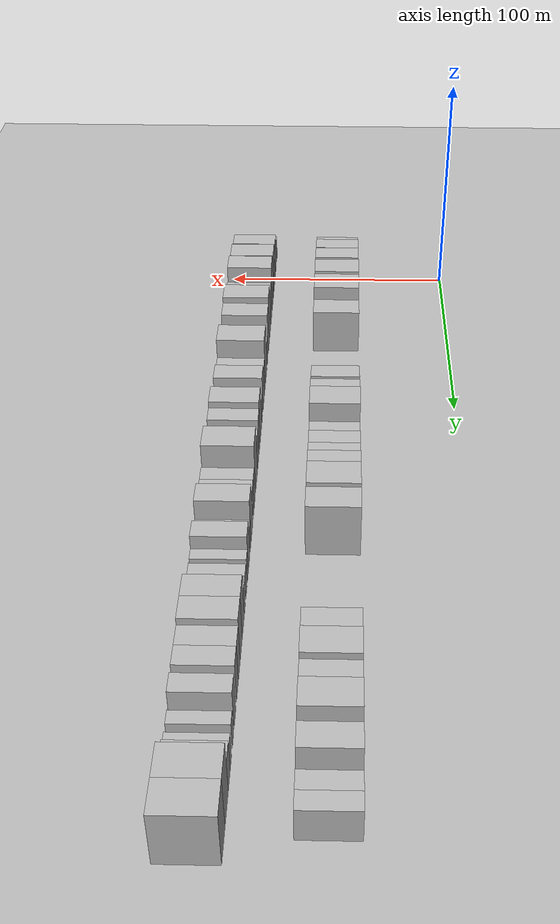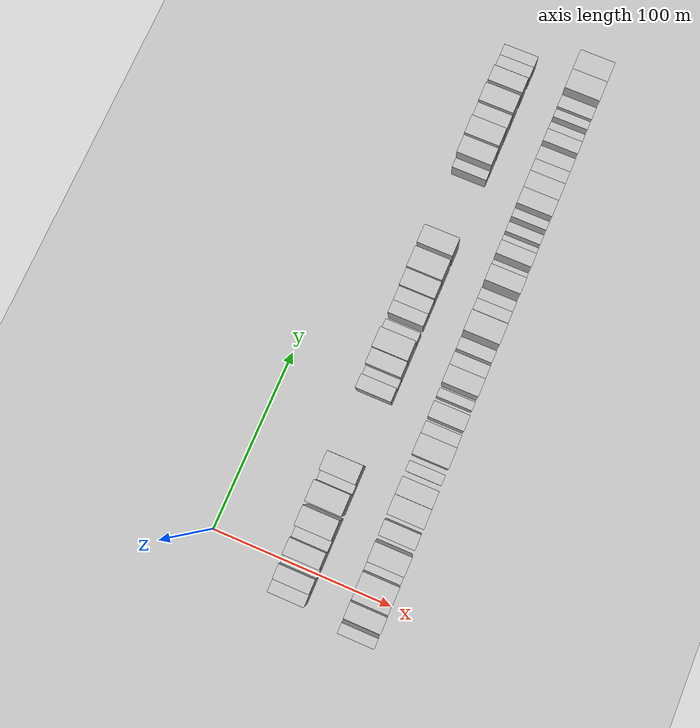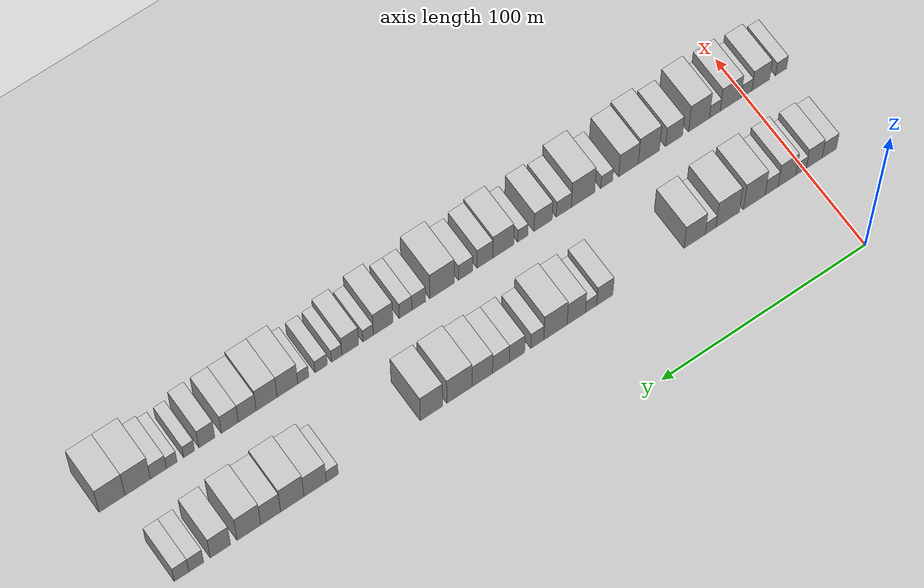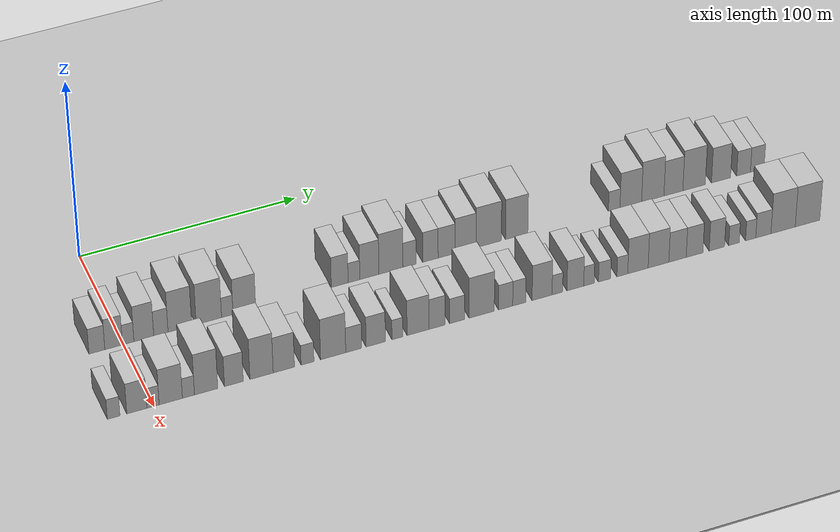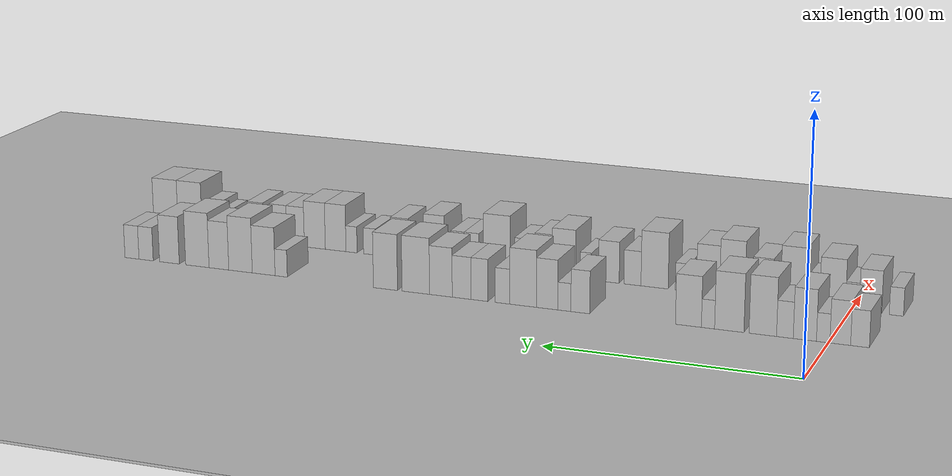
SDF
<sdf version="1.6">
 <world name="default">
  <include><name>ground_plane_1</name><uri>model://HANNAS_ground_plane</uri></include>
  <include>
   <name>ground_plane_2</name>
   <uri>model://HANNAS_ground_plane</uri>
   <pose>100 0 0  0 0 0</pose>
  </include>
  <model name="building_32">
   <static>1</static>
   <pose>50.0000 -12.0020 0 0.000000 0.000000 0.000000</pose>
   <link name="link">
    <pose>0 0 7.50 0 0 0</pose>
    <collision name="collision"><geometry><box><size>20.0000 7.1049 15.0000</size></box></geometry></collision>
    <visual name="visual">
     <cast_shadows>0</cast_shadows>
     <geometry><box><size>20.0000 7.1049 15.0000</size></box></geometry>
     <material>
      <script>
       <uri>model://HANNAS_wall/materials/scripts</uri>
       <uri>model://HANNAS_wall/materials/textures</uri>
       <name>vrc/HANNAS_wall</name>
      </script>
     </material>
    </visual>
   </link>
  </model>
  <model name="building_33">
   <static>1</static>
   <pose>50.0000 -4.5010 0 0.000000 0.000000 0.000000</pose>
   <link name="link">
    <pose>0 0 9.00 0 0 0</pose>
    <collision name="collision"><geometry><box><size>20.0000 7.8972 18.0000</size></box></geometry></collision>
    <visual name="visual">
     <cast_shadows>0</cast_shadows>
     <geometry><box><size>20.0000 7.8972 18.0000</size></box></geometry>
     <material>
      <script>
       <uri>model://HANNAS_wall/materials/scripts</uri>
       <uri>model://HANNAS_wall/materials/textures</uri>
       <name>vrc/HANNAS_wall</name>
      </script>
     </material>
    </visual>
   </link>
  </model>
  <model name="building_34">
   <static>1</static>
   <pose>50.0000 2.0246 0 0.000000 0.000000 0.000000</pose>
   <link name="link">
    <pose>0 0 6.00 0 0 0</pose>
    <collision name="collision"><geometry><box><size>20.0000 5.1541 12.0000</size></box></geometry></collision>
    <visual name="visual">
     <cast_shadows>0</cast_shadows>
     <geometry><box><size>20.0000 5.1541 12.0000</size></box></geometry>
     <material>
      <script>
       <uri>model://HANNAS_wall/materials/scripts</uri>
       <uri>model://HANNAS_wall/materials/textures</uri>
       <name>vrc/HANNAS_wall</name>
      </script>
     </material>
    </visual>
   </link>
  </model>
  <model name="building_35">
   <static>1</static>
   <pose>50.0000 9.0634 0 0.000000 0.000000 0.000000</pose>
   <link name="link">
    <pose>0 0 10.50 0 0 0</pose>
    <collision name="collision"><geometry><box><size>20.0000 8.9235 21.0000</size></box></geometry></collision>
    <visual name="visual">
     <cast_shadows>0</cast_shadows>
     <geometry><box><size>20.0000 8.9235 21.0000</size></box></geometry>
     <material>
      <script>
       <uri>model://HANNAS_wall/materials/scripts</uri>
       <uri>model://HANNAS_wall/materials/textures</uri>
       <name>vrc/HANNAS_wall</name>
      </script>
     </material>
    </visual>
   </link>
  </model>
  <model name="building_36">
   <static>1</static>
   <pose>50.0000 16.7564 0 0.000000 0.000000 0.000000</pose>
   <link name="link">
    <pose>0 0 7.50 0 0 0</pose>
    <collision name="collision"><geometry><box><size>20.0000 6.4625 15.0000</size></box></geometry></collision>
    <visual name="visual">
     <cast_shadows>0</cast_shadows>
     <geometry><box><size>20.0000 6.4625 15.0000</size></box></geometry>
     <material>
      <script>
       <uri>model://HANNAS_wall/materials/scripts</uri>
       <uri>model://HANNAS_wall/materials/textures</uri>
       <name>vrc/HANNAS_wall</name>
      </script>
     </material>
    </visual>
   </link>
  </model>
  <model name="building_37">
   <static>1</static>
   <pose>50.0000 25.3487 0 0.000000 0.000000 0.000000</pose>
   <link name="link">
    <pose>0 0 12.00 0 0 0</pose>
    <collision name="collision"><geometry><box><size>20.0000 10.7221 24.0000</size></box></geometry></collision>
    <visual name="visual">
     <cast_shadows>0</cast_shadows>
     <geometry><box><size>20.0000 10.7221 24.0000</size></box></geometry>
     <material>
      <script>
       <uri>model://HANNAS_wall/materials/scripts</uri>
       <uri>model://HANNAS_wall/materials/textures</uri>
       <name>vrc/HANNAS_wall</name>
      </script>
     </material>
    </visual>
   </link>
  </model>
  <model name="building_38">
   <static>1</static>
   <pose>50.0000 38.4899 0 0.000000 0.000000 0.000000</pose>
   <link name="link">
    <pose>0 0 12.00 0 0 0</pose>
    <collision name="collision"><geometry><box><size>20.0000 11.5604 24.0000</size></box></geometry></collision>
    <visual name="visual">
     <cast_shadows>0</cast_shadows>
     <geometry><box><size>20.0000 11.5604 24.0000</size></box></geometry>
     <material>
      <script>
       <uri>model://HANNAS_wall/materials/scripts</uri>
       <uri>model://HANNAS_wall/materials/textures</uri>
       <name>vrc/HANNAS_wall</name>
      </script>
     </material>
    </visual>
   </link>
  </model>
  <model name="building_39">
   <static>1</static>
   <pose>50.0000 46.8891 0 0.000000 0.000000 0.000000</pose>
   <link name="link">
    <pose>0 0 6.00 0 0 0</pose>
    <collision name="collision"><geometry><box><size>20.0000 5.2379 12.0000</size></box></geometry></collision>
    <visual name="visual">
     <cast_shadows>0</cast_shadows>
     <geometry><box><size>20.0000 5.2379 12.0000</size></box></geometry>
     <material>
      <script>
       <uri>model://HANNAS_wall/materials/scripts</uri>
       <uri>model://HANNAS_wall/materials/textures</uri>
       <name>vrc/HANNAS_wall</name>
      </script>
     </material>
    </visual>
   </link>
  </model>
  <model name="building_40">
   <static>1</static>
   <pose>50.0000 54.6845 0 0.000000 0.000000 0.000000</pose>
   <link name="link">
    <pose>0 0 10.50 0 0 0</pose>
    <collision name="collision"><geometry><box><size>20.0000 10.3529 21.0000</size></box></geometry></collision>
    <visual name="visual">
     <cast_shadows>0</cast_shadows>
     <geometry><box><size>20.0000 10.3529 21.0000</size></box></geometry>
     <material>
      <script>
       <uri>model://HANNAS_wall/materials/scripts</uri>
       <uri>model://HANNAS_wall/materials/textures</uri>
       <name>vrc/HANNAS_wall</name>
      </script>
     </material>
    </visual>
   </link>
  </model>
  <model name="building_41">
   <static>1</static>
   <pose>50.0000 98.5594 0 0.000000 0.000000 0.000000</pose>
   <link name="link">
    <pose>0 0 9.00 0 0 0</pose>
    <collision name="collision"><geometry><box><size>20.0000 7.7990 18.0000</size></box></geometry></collision>
    <visual name="visual">
     <cast_shadows>0</cast_shadows>
     <geometry><box><size>20.0000 7.7990 18.0000</size></box></geometry>
     <material>
      <script>
       <uri>model://HANNAS_wall/materials/scripts</uri>
       <uri>model://HANNAS_wall/materials/textures</uri>
       <name>vrc/HANNAS_wall</name>
      </script>
     </material>
    </visual>
   </link>
  </model>
  <model name="building_42">
   <static>1</static>
   <pose>50.0000 105.1800 0 0.000000 0.000000 0.000000</pose>
   <link name="link">
    <pose>0 0 6.00 0 0 0</pose>
    <collision name="collision"><geometry><box><size>20.0000 5.4422 12.0000</size></box></geometry></collision>
    <visual name="visual">
     <cast_shadows>0</cast_shadows>
     <geometry><box><size>20.0000 5.4422 12.0000</size></box></geometry>
     <material>
      <script>
       <uri>model://HANNAS_wall/materials/scripts</uri>
       <uri>model://HANNAS_wall/materials/textures</uri>
       <name>vrc/HANNAS_wall</name>
      </script>
     </material>
    </visual>
   </link>
  </model>
  <model name="building_43">
   <static>1</static>
   <pose>50.0000 112.3413 0 0.000000 0.000000 0.000000</pose>
   <link name="link">
    <pose>0 0 10.50 0 0 0</pose>
    <collision name="collision"><geometry><box><size>20.0000 8.8804 21.0000</size></box></geometry></collision>
    <visual name="visual">
     <cast_shadows>0</cast_shadows>
     <geometry><box><size>20.0000 8.8804 21.0000</size></box></geometry>
     <material>
      <script>
       <uri>model://HANNAS_wall/materials/scripts</uri>
       <uri>model://HANNAS_wall/materials/textures</uri>
       <name>vrc/HANNAS_wall</name>
      </script>
     </material>
    </visual>
   </link>
  </model>
  <model name="building_44">
   <static>1</static>
   <pose>50.0000 122.3902 0 0.000000 0.000000 0.000000</pose>
   <link name="link">
    <pose>0 0 12.00 0 0 0</pose>
    <collision name="collision"><geometry><box><size>20.0000 11.2172 24.0000</size></box></geometry></collision>
    <visual name="visual">
     <cast_shadows>0</cast_shadows>
     <geometry><box><size>20.0000 11.2172 24.0000</size></box></geometry>
     <material>
      <script>
       <uri>model://HANNAS_wall/materials/scripts</uri>
       <uri>model://HANNAS_wall/materials/textures</uri>
       <name>vrc/HANNAS_wall</name>
      </script>
     </material>
    </visual>
   </link>
  </model>
  <model name="building_45">
   <static>1</static>
   <pose>50.0000 131.1028 0 0.000000 0.000000 0.000000</pose>
   <link name="link">
    <pose>0 0 7.50 0 0 0</pose>
    <collision name="collision"><geometry><box><size>20.0000 6.2081 15.0000</size></box></geometry></collision>
    <visual name="visual">
     <cast_shadows>0</cast_shadows>
     <geometry><box><size>20.0000 6.2081 15.0000</size></box></geometry>
     <material>
      <script>
       <uri>model://HANNAS_wall/materials/scripts</uri>
       <uri>model://HANNAS_wall/materials/textures</uri>
       <name>vrc/HANNAS_wall</name>
      </script>
     </material>
    </visual>
   </link>
  </model>
  <model name="building_46">
   <static>1</static>
   <pose>50.0000 140.8274 0 0.000000 0.000000 0.000000</pose>
   <link name="link">
    <pose>0 0 9.00 0 0 0</pose>
    <collision name="collision"><geometry><box><size>20.0000 7.2410 18.0000</size></box></geometry></collision>
    <visual name="visual">
     <cast_shadows>0</cast_shadows>
     <geometry><box><size>20.0000 7.2410 18.0000</size></box></geometry>
     <material>
      <script>
       <uri>model://HANNAS_wall/materials/scripts</uri>
       <uri>model://HANNAS_wall/materials/textures</uri>
       <name>vrc/HANNAS_wall</name>
      </script>
     </material>
    </visual>
   </link>
  </model>
  <model name="building_47">
   <static>1</static>
   <pose>50.0000 148.4750 0 0.000000 0.000000 0.000000</pose>
   <link name="link">
    <pose>0 0 9.00 0 0 0</pose>
    <collision name="collision"><geometry><box><size>20.0000 8.0542 18.0000</size></box></geometry></collision>
    <visual name="visual">
     <cast_shadows>0</cast_shadows>
     <geometry><box><size>20.0000 8.0542 18.0000</size></box></geometry>
     <material>
      <script>
       <uri>model://HANNAS_wall/materials/scripts</uri>
       <uri>model://HANNAS_wall/materials/textures</uri>
       <name>vrc/HANNAS_wall</name>
      </script>
     </material>
    </visual>
   </link>
  </model>
  <model name="building_48">
   <static>1</static>
   <pose>50.0000 157.4000 0 0.000000 0.000000 0.000000</pose>
   <link name="link">
    <pose>0 0 10.50 0 0 0</pose>
    <collision name="collision"><geometry><box><size>20.0000 9.7958 21.0000</size></box></geometry></collision>
    <visual name="visual">
     <cast_shadows>0</cast_shadows>
     <geometry><box><size>20.0000 9.7958 21.0000</size></box></geometry>
     <material>
      <script>
       <uri>model://HANNAS_wall/materials/scripts</uri>
       <uri>model://HANNAS_wall/materials/textures</uri>
       <name>vrc/HANNAS_wall</name>
      </script>
     </material>
    </visual>
   </link>
  </model>
  <model name="building_49">
   <static>1</static>
   <pose>50.0000 168.2765 0 0.000000 0.000000 0.000000</pose>
   <link name="link">
    <pose>0 0 12.00 0 0 0</pose>
    <collision name="collision"><geometry><box><size>20.0000 11.9573 24.0000</size></box></geometry></collision>
    <visual name="visual">
     <cast_shadows>0</cast_shadows>
     <geometry><box><size>20.0000 11.9573 24.0000</size></box></geometry>
     <material>
      <script>
       <uri>model://HANNAS_wall/materials/scripts</uri>
       <uri>model://HANNAS_wall/materials/textures</uri>
       <name>vrc/HANNAS_wall</name>
      </script>
     </material>
    </visual>
   </link>
  </model>
  <model name="building_50">
   <static>1</static>
   <pose>50.0000 181.5439 0 0.000000 0.000000 0.000000</pose>
   <link name="link">
    <pose>0 0 12.00 0 0 0</pose>
    <collision name="collision"><geometry><box><size>20.0000 10.5775 24.0000</size></box></geometry></collision>
    <visual name="visual">
     <cast_shadows>0</cast_shadows>
     <geometry><box><size>20.0000 10.5775 24.0000</size></box></geometry>
     <material>
      <script>
       <uri>model://HANNAS_wall/materials/scripts</uri>
       <uri>model://HANNAS_wall/materials/textures</uri>
       <name>vrc/HANNAS_wall</name>
      </script>
     </material>
    </visual>
   </link>
  </model>
  <model name="building_51">
   <static>1</static>
   <pose>50.0000 228.1648 0 0.000000 0.000000 0.000000</pose>
   <link name="link">
    <pose>0 0 6.00 0 0 0</pose>
    <collision name="collision"><geometry><box><size>20.0000 5.5547 12.0000</size></box></geometry></collision>
    <visual name="visual">
     <cast_shadows>0</cast_shadows>
     <geometry><box><size>20.0000 5.5547 12.0000</size></box></geometry>
     <material>
      <script>
       <uri>model://HANNAS_wall/materials/scripts</uri>
       <uri>model://HANNAS_wall/materials/textures</uri>
       <name>vrc/HANNAS_wall</name>
      </script>
     </material>
    </visual>
   </link>
  </model>
  <model name="building_52">
   <static>1</static>
   <pose>50.0000 236.1582 0 0.000000 0.000000 0.000000</pose>
   <link name="link">
    <pose>0 0 10.50 0 0 0</pose>
    <collision name="collision"><geometry><box><size>20.0000 10.4321 21.0000</size></box></geometry></collision>
    <visual name="visual">
     <cast_shadows>0</cast_shadows>
     <geometry><box><size>20.0000 10.4321 21.0000</size></box></geometry>
     <material>
      <script>
       <uri>model://HANNAS_wall/materials/scripts</uri>
       <uri>model://HANNAS_wall/materials/textures</uri>
       <name>vrc/HANNAS_wall</name>
      </script>
     </material>
    </visual>
   </link>
  </model>
  <model name="building_53">
   <static>1</static>
   <pose>50.0000 246.7949 0 0.000000 0.000000 0.000000</pose>
   <link name="link">
    <pose>0 0 12.00 0 0 0</pose>
    <collision name="collision"><geometry><box><size>20.0000 10.8414 24.0000</size></box></geometry></collision>
    <visual name="visual">
     <cast_shadows>0</cast_shadows>
     <geometry><box><size>20.0000 10.8414 24.0000</size></box></geometry>
     <material>
      <script>
       <uri>model://HANNAS_wall/materials/scripts</uri>
       <uri>model://HANNAS_wall/materials/textures</uri>
       <name>vrc/HANNAS_wall</name>
      </script>
     </material>
    </visual>
   </link>
  </model>
  <model name="building_54">
   <static>1</static>
   <pose>50.0000 256.7974 0 0.000000 0.000000 0.000000</pose>
   <link name="link">
    <pose>0 0 10.50 0 0 0</pose>
    <collision name="collision"><geometry><box><size>20.0000 9.1635 21.0000</size></box></geometry></collision>
    <visual name="visual">
     <cast_shadows>0</cast_shadows>
     <geometry><box><size>20.0000 9.1635 21.0000</size></box></geometry>
     <material>
      <script>
       <uri>model://HANNAS_wall/materials/scripts</uri>
       <uri>model://HANNAS_wall/materials/textures</uri>
       <name>vrc/HANNAS_wall</name>
      </script>
     </material>
    </visual>
   </link>
  </model>
  <model name="building_55">
   <static>1</static>
   <pose>50.0000 266.8488 0 0.000000 0.000000 0.000000</pose>
   <link name="link">
    <pose>0 0 12.00 0 0 0</pose>
    <collision name="collision"><geometry><box><size>20.0000 10.9392 24.0000</size></box></geometry></collision>
    <visual name="visual">
     <cast_shadows>0</cast_shadows>
     <geometry><box><size>20.0000 10.9392 24.0000</size></box></geometry>
     <material>
      <script>
       <uri>model://HANNAS_wall/materials/scripts</uri>
       <uri>model://HANNAS_wall/materials/textures</uri>
       <name>vrc/HANNAS_wall</name>
      </script>
     </material>
    </visual>
   </link>
  </model>
  <model name="building_56">
   <static>1</static>
   <pose>50.0000 279.9797 0 0.000000 0.000000 0.000000</pose>
   <link name="link">
    <pose>0 0 10.50 0 0 0</pose>
    <collision name="collision"><geometry><box><size>20.0000 9.3226 21.0000</size></box></geometry></collision>
    <visual name="visual">
     <cast_shadows>0</cast_shadows>
     <geometry><box><size>20.0000 9.3226 21.0000</size></box></geometry>
     <material>
      <script>
       <uri>model://HANNAS_wall/materials/scripts</uri>
       <uri>model://HANNAS_wall/materials/textures</uri>
       <name>vrc/HANNAS_wall</name>
      </script>
     </material>
    </visual>
   </link>
  </model>
  <model name="building_57">
   <static>1</static>
   <pose>50.0000 291.0254 0 0.000000 0.000000 0.000000</pose>
   <link name="link">
    <pose>0 0 7.50 0 0 0</pose>
    <collision name="collision"><geometry><box><size>20.0000 6.7688 15.0000</size></box></geometry></collision>
    <visual name="visual">
     <cast_shadows>0</cast_shadows>
     <geometry><box><size>20.0000 6.7688 15.0000</size></box></geometry>
     <material>
      <script>
       <uri>model://HANNAS_wall/materials/scripts</uri>
       <uri>model://HANNAS_wall/materials/textures</uri>
       <name>vrc/HANNAS_wall</name>
      </script>
     </material>
    </visual>
   </link>
  </model>
  <model name="building_58">
   <static>1</static>
   <pose>50.0000 297.7569 0 0.000000 0.000000 0.000000</pose>
   <link name="link">
    <pose>0 0 7.50 0 0 0</pose>
    <collision name="collision"><geometry><box><size>20.0000 6.6942 15.0000</size></box></geometry></collision>
    <visual name="visual">
     <cast_shadows>0</cast_shadows>
     <geometry><box><size>20.0000 6.6942 15.0000</size></box></geometry>
     <material>
      <script>
       <uri>model://HANNAS_wall/materials/scripts</uri>
       <uri>model://HANNAS_wall/materials/textures</uri>
       <name>vrc/HANNAS_wall</name>
      </script>
     </material>
    </visual>
   </link>
  </model>
  <model name="building_92">
   <static>1</static>
   <pose>90.0000 -17.9194 0 0.000000 0.000000 0.000000</pose>
   <link name="link">
    <pose>0 0 6.00 0 0 0</pose>
    <collision name="collision"><geometry><box><size>20.0000 5.5938 12.0000</size></box></geometry></collision>
    <visual name="visual">
     <cast_shadows>0</cast_shadows>
     <geometry><box><size>20.0000 5.5938 12.0000</size></box></geometry>
     <material>
      <script>
       <uri>model://HANNAS_wall/materials/scripts</uri>
       <uri>model://HANNAS_wall/materials/textures</uri>
       <name>vrc/HANNAS_wall</name>
      </script>
     </material>
    </visual>
   </link>
  </model>
  <model name="building_93">
   <static>1</static>
   <pose>90.0000 -7.6824 0 0.000000 0.000000 0.000000</pose>
   <link name="link">
    <pose>0 0 9.00 0 0 0</pose>
    <collision name="collision"><geometry><box><size>20.0000 8.8802 18.0000</size></box></geometry></collision>
    <visual name="visual">
     <cast_shadows>0</cast_shadows>
     <geometry><box><size>20.0000 8.8802 18.0000</size></box></geometry>
     <material>
      <script>
       <uri>model://HANNAS_wall/materials/scripts</uri>
       <uri>model://HANNAS_wall/materials/textures</uri>
       <name>vrc/HANNAS_wall</name>
      </script>
     </material>
    </visual>
   </link>
  </model>
  <model name="building_94">
   <static>1</static>
   <pose>90.0000 -0.5078 0 0.000000 0.000000 0.000000</pose>
   <link name="link">
    <pose>0 0 6.00 0 0 0</pose>
    <collision name="collision"><geometry><box><size>20.0000 5.4689 12.0000</size></box></geometry></collision>
    <visual name="visual">
     <cast_shadows>0</cast_shadows>
     <geometry><box><size>20.0000 5.4689 12.0000</size></box></geometry>
     <material>
      <script>
       <uri>model://HANNAS_wall/materials/scripts</uri>
       <uri>model://HANNAS_wall/materials/textures</uri>
       <name>vrc/HANNAS_wall</name>
      </script>
     </material>
    </visual>
   </link>
  </model>
  <model name="building_95">
   <static>1</static>
   <pose>90.0000 7.3962 0 0.000000 0.000000 0.000000</pose>
   <link name="link">
    <pose>0 0 10.50 0 0 0</pose>
    <collision name="collision"><geometry><box><size>20.0000 10.3393 21.0000</size></box></geometry></collision>
    <visual name="visual">
     <cast_shadows>0</cast_shadows>
     <geometry><box><size>20.0000 10.3393 21.0000</size></box></geometry>
     <material>
      <script>
       <uri>model://HANNAS_wall/materials/scripts</uri>
       <uri>model://HANNAS_wall/materials/textures</uri>
       <name>vrc/HANNAS_wall</name>
      </script>
     </material>
    </visual>
   </link>
  </model>
  <model name="building_96">
   <static>1</static>
   <pose>90.0000 15.2545 0 0.000000 0.000000 0.000000</pose>
   <link name="link">
    <pose>0 0 6.00 0 0 0</pose>
    <collision name="collision"><geometry><box><size>20.0000 5.3772 12.0000</size></box></geometry></collision>
    <visual name="visual">
     <cast_shadows>0</cast_shadows>
     <geometry><box><size>20.0000 5.3772 12.0000</size></box></geometry>
     <material>
      <script>
       <uri>model://HANNAS_wall/materials/scripts</uri>
       <uri>model://HANNAS_wall/materials/textures</uri>
       <name>vrc/HANNAS_wall</name>
      </script>
     </material>
    </visual>
   </link>
  </model>
  <model name="building_97">
   <static>1</static>
   <pose>90.0000 23.1476 0 0.000000 0.000000 0.000000</pose>
   <link name="link">
    <pose>0 0 12.00 0 0 0</pose>
    <collision name="collision"><geometry><box><size>20.0000 10.4091 24.0000</size></box></geometry></collision>
    <visual name="visual">
     <cast_shadows>0</cast_shadows>
     <geometry><box><size>20.0000 10.4091 24.0000</size></box></geometry>
     <material>
      <script>
       <uri>model://HANNAS_wall/materials/scripts</uri>
       <uri>model://HANNAS_wall/materials/textures</uri>
       <name>vrc/HANNAS_wall</name>
      </script>
     </material>
    </visual>
   </link>
  </model>
  <model name="building_98">
   <static>1</static>
   <pose>90.0000 35.5599 0 0.000000 0.000000 0.000000</pose>
   <link name="link">
    <pose>0 0 9.00 0 0 0</pose>
    <collision name="collision"><geometry><box><size>20.0000 8.4156 18.0000</size></box></geometry></collision>
    <visual name="visual">
     <cast_shadows>0</cast_shadows>
     <geometry><box><size>20.0000 8.4156 18.0000</size></box></geometry>
     <material>
      <script>
       <uri>model://HANNAS_wall/materials/scripts</uri>
       <uri>model://HANNAS_wall/materials/textures</uri>
       <name>vrc/HANNAS_wall</name>
      </script>
     </material>
    </visual>
   </link>
  </model>
  <model name="building_99">
   <static>1</static>
   <pose>90.0000 48.0011 0 0.000000 0.000000 0.000000</pose>
   <link name="link">
    <pose>0 0 12.00 0 0 0</pose>
    <collision name="collision"><geometry><box><size>20.0000 10.4667 24.0000</size></box></geometry></collision>
    <visual name="visual">
     <cast_shadows>0</cast_shadows>
     <geometry><box><size>20.0000 10.4667 24.0000</size></box></geometry>
     <material>
      <script>
       <uri>model://HANNAS_wall/materials/scripts</uri>
       <uri>model://HANNAS_wall/materials/textures</uri>
       <name>vrc/HANNAS_wall</name>
      </script>
     </material>
    </visual>
   </link>
  </model>
  <model name="building_100">
   <static>1</static>
   <pose>90.0000 58.0414 0 0.000000 0.000000 0.000000</pose>
   <link name="link">
    <pose>0 0 10.50 0 0 0</pose>
    <collision name="collision"><geometry><box><size>20.0000 9.6138 21.0000</size></box></geometry></collision>
    <visual name="visual">
     <cast_shadows>0</cast_shadows>
     <geometry><box><size>20.0000 9.6138 21.0000</size></box></geometry>
     <material>
      <script>
       <uri>model://HANNAS_wall/materials/scripts</uri>
       <uri>model://HANNAS_wall/materials/textures</uri>
       <name>vrc/HANNAS_wall</name>
      </script>
     </material>
    </visual>
   </link>
  </model>
  <model name="building_101">
   <static>1</static>
   <pose>90.0000 68.7507 0 0.000000 0.000000 0.000000</pose>
   <link name="link">
    <pose>0 0 6.00 0 0 0</pose>
    <collision name="collision"><geometry><box><size>20.0000 5.8049 12.0000</size></box></geometry></collision>
    <visual name="visual">
     <cast_shadows>0</cast_shadows>
     <geometry><box><size>20.0000 5.8049 12.0000</size></box></geometry>
     <material>
      <script>
       <uri>model://HANNAS_wall/materials/scripts</uri>
       <uri>model://HANNAS_wall/materials/textures</uri>
       <name>vrc/HANNAS_wall</name>
      </script>
     </material>
    </visual>
   </link>
  </model>
  <model name="building_102">
   <static>1</static>
   <pose>90.0000 80.3882 0 0.000000 0.000000 0.000000</pose>
   <link name="link">
    <pose>0 0 12.00 0 0 0</pose>
    <collision name="collision"><geometry><box><size>20.0000 11.4701 24.0000</size></box></geometry></collision>
    <visual name="visual">
     <cast_shadows>0</cast_shadows>
     <geometry><box><size>20.0000 11.4701 24.0000</size></box></geometry>
     <material>
      <script>
       <uri>model://HANNAS_wall/materials/scripts</uri>
       <uri>model://HANNAS_wall/materials/textures</uri>
       <name>vrc/HANNAS_wall</name>
      </script>
     </material>
    </visual>
   </link>
  </model>
  <model name="building_103">
   <static>1</static>
   <pose>90.0000 89.7596 0 0.000000 0.000000 0.000000</pose>
   <link name="link">
    <pose>0 0 7.50 0 0 0</pose>
    <collision name="collision"><geometry><box><size>20.0000 7.2728 15.0000</size></box></geometry></collision>
    <visual name="visual">
     <cast_shadows>0</cast_shadows>
     <geometry><box><size>20.0000 7.2728 15.0000</size></box></geometry>
     <material>
      <script>
       <uri>model://HANNAS_wall/materials/scripts</uri>
       <uri>model://HANNAS_wall/materials/textures</uri>
       <name>vrc/HANNAS_wall</name>
      </script>
     </material>
    </visual>
   </link>
  </model>
  <model name="building_104">
   <static>1</static>
   <pose>90.0000 99.8215 0 0.000000 0.000000 0.000000</pose>
   <link name="link">
    <pose>0 0 9.00 0 0 0</pose>
    <collision name="collision"><geometry><box><size>20.0000 8.8509 18.0000</size></box></geometry></collision>
    <visual name="visual">
     <cast_shadows>0</cast_shadows>
     <geometry><box><size>20.0000 8.8509 18.0000</size></box></geometry>
     <material>
      <script>
       <uri>model://HANNAS_wall/materials/scripts</uri>
       <uri>model://HANNAS_wall/materials/textures</uri>
       <name>vrc/HANNAS_wall</name>
      </script>
     </material>
    </visual>
   </link>
  </model>
  <model name="building_105">
   <static>1</static>
   <pose>90.0000 109.7082 0 0.000000 0.000000 0.000000</pose>
   <link name="link">
    <pose>0 0 6.00 0 0 0</pose>
    <collision name="collision"><geometry><box><size>20.0000 4.9226 12.0000</size></box></geometry></collision>
    <visual name="visual">
     <cast_shadows>0</cast_shadows>
     <geometry><box><size>20.0000 4.9226 12.0000</size></box></geometry>
     <material>
      <script>
       <uri>model://HANNAS_wall/materials/scripts</uri>
       <uri>model://HANNAS_wall/materials/textures</uri>
       <name>vrc/HANNAS_wall</name>
      </script>
     </material>
    </visual>
   </link>
  </model>
  <model name="building_106">
   <static>1</static>
   <pose>90.0000 119.2009 0 0.000000 0.000000 0.000000</pose>
   <link name="link">
    <pose>0 0 10.50 0 0 0</pose>
    <collision name="collision"><geometry><box><size>20.0000 10.0628 21.0000</size></box></geometry></collision>
    <visual name="visual">
     <cast_shadows>0</cast_shadows>
     <geometry><box><size>20.0000 10.0628 21.0000</size></box></geometry>
     <material>
      <script>
       <uri>model://HANNAS_wall/materials/scripts</uri>
       <uri>model://HANNAS_wall/materials/textures</uri>
       <name>vrc/HANNAS_wall</name>
      </script>
     </material>
    </visual>
   </link>
  </model>
  <model name="building_107">
   <static>1</static>
   <pose>90.0000 128.0181 0 0.000000 0.000000 0.000000</pose>
   <link name="link">
    <pose>0 0 9.00 0 0 0</pose>
    <collision name="collision"><geometry><box><size>20.0000 7.5715 18.0000</size></box></geometry></collision>
    <visual name="visual">
     <cast_shadows>0</cast_shadows>
     <geometry><box><size>20.0000 7.5715 18.0000</size></box></geometry>
     <material>
      <script>
       <uri>model://HANNAS_wall/materials/scripts</uri>
       <uri>model://HANNAS_wall/materials/textures</uri>
       <name>vrc/HANNAS_wall</name>
      </script>
     </material>
    </visual>
   </link>
  </model>
  <model name="building_108">
   <static>1</static>
   <pose>90.0000 137.2961 0 0.000000 0.000000 0.000000</pose>
   <link name="link">
    <pose>0 0 7.50 0 0 0</pose>
    <collision name="collision"><geometry><box><size>20.0000 6.9845 15.0000</size></box></geometry></collision>
    <visual name="visual">
     <cast_shadows>0</cast_shadows>
     <geometry><box><size>20.0000 6.9845 15.0000</size></box></geometry>
     <material>
      <script>
       <uri>model://HANNAS_wall/materials/scripts</uri>
       <uri>model://HANNAS_wall/materials/textures</uri>
       <name>vrc/HANNAS_wall</name>
      </script>
     </material>
    </visual>
   </link>
  </model>
  <model name="building_109">
   <static>1</static>
   <pose>90.0000 148.6419 0 0.000000 0.000000 0.000000</pose>
   <link name="link">
    <pose>0 0 12.00 0 0 0</pose>
    <collision name="collision"><geometry><box><size>20.0000 11.7071 24.0000</size></box></geometry></collision>
    <visual name="visual">
     <cast_shadows>0</cast_shadows>
     <geometry><box><size>20.0000 11.7071 24.0000</size></box></geometry>
     <material>
      <script>
       <uri>model://HANNAS_wall/materials/scripts</uri>
       <uri>model://HANNAS_wall/materials/textures</uri>
       <name>vrc/HANNAS_wall</name>
      </script>
     </material>
    </visual>
   </link>
  </model>
  <model name="building_110">
   <static>1</static>
   <pose>90.0000 159.7817 0 0.000000 0.000000 0.000000</pose>
   <link name="link">
    <pose>0 0 7.50 0 0 0</pose>
    <collision name="collision"><geometry><box><size>20.0000 6.5724 15.0000</size></box></geometry></collision>
    <visual name="visual">
     <cast_shadows>0</cast_shadows>
     <geometry><box><size>20.0000 6.5724 15.0000</size></box></geometry>
     <material>
      <script>
       <uri>model://HANNAS_wall/materials/scripts</uri>
       <uri>model://HANNAS_wall/materials/textures</uri>
       <name>vrc/HANNAS_wall</name>
      </script>
     </material>
    </visual>
   </link>
  </model>
  <model name="building_111">
   <static>1</static>
   <pose>90.0000 166.0909 0 0.000000 0.000000 0.000000</pose>
   <link name="link">
    <pose>0 0 7.50 0 0 0</pose>
    <collision name="collision"><geometry><box><size>20.0000 6.0460 15.0000</size></box></geometry></collision>
    <visual name="visual">
     <cast_shadows>0</cast_shadows>
     <geometry><box><size>20.0000 6.0460 15.0000</size></box></geometry>
     <material>
      <script>
       <uri>model://HANNAS_wall/materials/scripts</uri>
       <uri>model://HANNAS_wall/materials/textures</uri>
       <name>vrc/HANNAS_wall</name>
      </script>
     </material>
    </visual>
   </link>
  </model>
  <model name="building_112">
   <static>1</static>
   <pose>90.0000 176.7826 0 0.000000 0.000000 0.000000</pose>
   <link name="link">
    <pose>0 0 10.50 0 0 0</pose>
    <collision name="collision"><geometry><box><size>20.0000 9.3373 21.0000</size></box></geometry></collision>
    <visual name="visual">
     <cast_shadows>0</cast_shadows>
     <geometry><box><size>20.0000 9.3373 21.0000</size></box></geometry>
     <material>
      <script>
       <uri>model://HANNAS_wall/materials/scripts</uri>
       <uri>model://HANNAS_wall/materials/textures</uri>
       <name>vrc/HANNAS_wall</name>
      </script>
     </material>
    </visual>
   </link>
  </model>
  <model name="building_113">
   <static>1</static>
   <pose>90.0000 183.9390 0 0.000000 0.000000 0.000000</pose>
   <link name="link">
    <pose>0 0 6.00 0 0 0</pose>
    <collision name="collision"><geometry><box><size>20.0000 4.9755 12.0000</size></box></geometry></collision>
    <visual name="visual">
     <cast_shadows>0</cast_shadows>
     <geometry><box><size>20.0000 4.9755 12.0000</size></box></geometry>
     <material>
      <script>
       <uri>model://HANNAS_wall/materials/scripts</uri>
       <uri>model://HANNAS_wall/materials/textures</uri>
       <name>vrc/HANNAS_wall</name>
      </script>
     </material>
    </visual>
   </link>
  </model>
  <model name="building_114">
   <static>1</static>
   <pose>90.0000 192.3892 0 0.000000 0.000000 0.000000</pose>
   <link name="link">
    <pose>0 0 9.00 0 0 0</pose>
    <collision name="collision"><geometry><box><size>20.0000 7.9249 18.0000</size></box></geometry></collision>
    <visual name="visual">
     <cast_shadows>0</cast_shadows>
     <geometry><box><size>20.0000 7.9249 18.0000</size></box></geometry>
     <material>
      <script>
       <uri>model://HANNAS_wall/materials/scripts</uri>
       <uri>model://HANNAS_wall/materials/textures</uri>
       <name>vrc/HANNAS_wall</name>
      </script>
     </material>
    </visual>
   </link>
  </model>
  <model name="building_115">
   <static>1</static>
   <pose>90.0000 198.8199 0 0.000000 0.000000 0.000000</pose>
   <link name="link">
    <pose>0 0 6.00 0 0 0</pose>
    <collision name="collision"><geometry><box><size>20.0000 4.9365 12.0000</size></box></geometry></collision>
    <visual name="visual">
     <cast_shadows>0</cast_shadows>
     <geometry><box><size>20.0000 4.9365 12.0000</size></box></geometry>
     <material>
      <script>
       <uri>model://HANNAS_wall/materials/scripts</uri>
       <uri>model://HANNAS_wall/materials/textures</uri>
       <name>vrc/HANNAS_wall</name>
      </script>
     </material>
    </visual>
   </link>
  </model>
  <model name="building_116">
   <static>1</static>
   <pose>90.0000 206.1501 0 0.000000 0.000000 0.000000</pose>
   <link name="link">
    <pose>0 0 6.00 0 0 0</pose>
    <collision name="collision"><geometry><box><size>20.0000 5.7239 12.0000</size></box></geometry></collision>
    <visual name="visual">
     <cast_shadows>0</cast_shadows>
     <geometry><box><size>20.0000 5.7239 12.0000</size></box></geometry>
     <material>
      <script>
       <uri>model://HANNAS_wall/materials/scripts</uri>
       <uri>model://HANNAS_wall/materials/textures</uri>
       <name>vrc/HANNAS_wall</name>
      </script>
     </material>
    </visual>
   </link>
  </model>
  <model name="building_117">
   <static>1</static>
   <pose>90.0000 214.5859 0 0.000000 0.000000 0.000000</pose>
   <link name="link">
    <pose>0 0 6.00 0 0 0</pose>
    <collision name="collision"><geometry><box><size>20.0000 5.1477 12.0000</size></box></geometry></collision>
    <visual name="visual">
     <cast_shadows>0</cast_shadows>
     <geometry><box><size>20.0000 5.1477 12.0000</size></box></geometry>
     <material>
      <script>
       <uri>model://HANNAS_wall/materials/scripts</uri>
       <uri>model://HANNAS_wall/materials/textures</uri>
       <name>vrc/HANNAS_wall</name>
      </script>
     </material>
    </visual>
   </link>
  </model>
  <model name="building_118">
   <static>1</static>
   <pose>90.0000 221.9915 0 0.000000 0.000000 0.000000</pose>
   <link name="link">
    <pose>0 0 10.50 0 0 0</pose>
    <collision name="collision"><geometry><box><size>20.0000 9.6636 21.0000</size></box></geometry></collision>
    <visual name="visual">
     <cast_shadows>0</cast_shadows>
     <geometry><box><size>20.0000 9.6636 21.0000</size></box></geometry>
     <material>
      <script>
       <uri>model://HANNAS_wall/materials/scripts</uri>
       <uri>model://HANNAS_wall/materials/textures</uri>
       <name>vrc/HANNAS_wall</name>
      </script>
     </material>
    </visual>
   </link>
  </model>
  <model name="building_119">
   <static>1</static>
   <pose>90.0000 231.7588 0 0.000000 0.000000 0.000000</pose>
   <link name="link">
    <pose>0 0 10.50 0 0 0</pose>
    <collision name="collision"><geometry><box><size>20.0000 9.8710 21.0000</size></box></geometry></collision>
    <visual name="visual">
     <cast_shadows>0</cast_shadows>
     <geometry><box><size>20.0000 9.8710 21.0000</size></box></geometry>
     <material>
      <script>
       <uri>model://HANNAS_wall/materials/scripts</uri>
       <uri>model://HANNAS_wall/materials/textures</uri>
       <name>vrc/HANNAS_wall</name>
      </script>
     </material>
    </visual>
   </link>
  </model>
  <model name="building_120">
   <static>1</static>
   <pose>90.0000 240.8363 0 0.000000 0.000000 0.000000</pose>
   <link name="link">
    <pose>0 0 9.00 0 0 0</pose>
    <collision name="collision"><geometry><box><size>20.0000 8.2839 18.0000</size></box></geometry></collision>
    <visual name="visual">
     <cast_shadows>0</cast_shadows>
     <geometry><box><size>20.0000 8.2839 18.0000</size></box></geometry>
     <material>
      <script>
       <uri>model://HANNAS_wall/materials/scripts</uri>
       <uri>model://HANNAS_wall/materials/textures</uri>
       <name>vrc/HANNAS_wall</name>
      </script>
     </material>
    </visual>
   </link>
  </model>
  <model name="building_121">
   <static>1</static>
   <pose>90.0000 248.9727 0 0.000000 0.000000 0.000000</pose>
   <link name="link">
    <pose>0 0 9.00 0 0 0</pose>
    <collision name="collision"><geometry><box><size>20.0000 7.9890 18.0000</size></box></geometry></collision>
    <visual name="visual">
     <cast_shadows>0</cast_shadows>
     <geometry><box><size>20.0000 7.9890 18.0000</size></box></geometry>
     <material>
      <script>
       <uri>model://HANNAS_wall/materials/scripts</uri>
       <uri>model://HANNAS_wall/materials/textures</uri>
       <name>vrc/HANNAS_wall</name>
      </script>
     </material>
    </visual>
   </link>
  </model>
  <model name="building_122">
   <static>1</static>
   <pose>90.0000 259.6583 0 0.000000 0.000000 0.000000</pose>
   <link name="link">
    <pose>0 0 9.00 0 0 0</pose>
    <collision name="collision"><geometry><box><size>20.0000 7.3822 18.0000</size></box></geometry></collision>
    <visual name="visual">
     <cast_shadows>0</cast_shadows>
     <geometry><box><size>20.0000 7.3822 18.0000</size></box></geometry>
     <material>
      <script>
       <uri>model://HANNAS_wall/materials/scripts</uri>
       <uri>model://HANNAS_wall/materials/textures</uri>
       <name>vrc/HANNAS_wall</name>
      </script>
     </material>
    </visual>
   </link>
  </model>
  <model name="building_123">
   <static>1</static>
   <pose>90.0000 267.8997 0 0.000000 0.000000 0.000000</pose>
   <link name="link">
    <pose>0 0 6.00 0 0 0</pose>
    <collision name="collision"><geometry><box><size>20.0000 5.1006 12.0000</size></box></geometry></collision>
    <visual name="visual">
     <cast_shadows>0</cast_shadows>
     <geometry><box><size>20.0000 5.1006 12.0000</size></box></geometry>
     <material>
      <script>
       <uri>model://HANNAS_wall/materials/scripts</uri>
       <uri>model://HANNAS_wall/materials/textures</uri>
       <name>vrc/HANNAS_wall</name>
      </script>
     </material>
    </visual>
   </link>
  </model>
  <model name="building_124">
   <static>1</static>
   <pose>90.0000 275.9193 0 0.000000 0.000000 0.000000</pose>
   <link name="link">
    <pose>0 0 6.00 0 0 0</pose>
    <collision name="collision"><geometry><box><size>20.0000 4.9385 12.0000</size></box></geometry></collision>
    <visual name="visual">
     <cast_shadows>0</cast_shadows>
     <geometry><box><size>20.0000 4.9385 12.0000</size></box></geometry>
     <material>
      <script>
       <uri>model://HANNAS_wall/materials/scripts</uri>
       <uri>model://HANNAS_wall/materials/textures</uri>
       <name>vrc/HANNAS_wall</name>
      </script>
     </material>
    </visual>
   </link>
  </model>
  <model name="building_125">
   <static>1</static>
   <pose>90.0000 282.0717 0 0.000000 0.000000 0.000000</pose>
   <link name="link">
    <pose>0 0 7.50 0 0 0</pose>
    <collision name="collision"><geometry><box><size>20.0000 7.3663 15.0000</size></box></geometry></collision>
    <visual name="visual">
     <cast_shadows>0</cast_shadows>
     <geometry><box><size>20.0000 7.3663 15.0000</size></box></geometry>
     <material>
      <script>
       <uri>model://HANNAS_wall/materials/scripts</uri>
       <uri>model://HANNAS_wall/materials/textures</uri>
       <name>vrc/HANNAS_wall</name>
      </script>
     </material>
    </visual>
   </link>
  </model>
  <model name="building_126">
   <static>1</static>
   <pose>90.0000 291.6283 0 0.000000 0.000000 0.000000</pose>
   <link name="link">
    <pose>0 0 12.00 0 0 0</pose>
    <collision name="collision"><geometry><box><size>20.0000 11.7469 24.0000</size></box></geometry></collision>
    <visual name="visual">
     <cast_shadows>0</cast_shadows>
     <geometry><box><size>20.0000 11.7469 24.0000</size></box></geometry>
     <material>
      <script>
       <uri>model://HANNAS_wall/materials/scripts</uri>
       <uri>model://HANNAS_wall/materials/textures</uri>
       <name>vrc/HANNAS_wall</name>
      </script>
     </material>
    </visual>
   </link>
  </model>
  <model name="building_127">
   <static>1</static>
   <pose>90.0000 303.4685 0 0.000000 0.000000 0.000000</pose>
   <link name="link">
    <pose>0 0 12.00 0 0 0</pose>
    <collision name="collision"><geometry><box><size>20.0000 11.9335 24.0000</size></box></geometry></collision>
    <visual name="visual">
     <cast_shadows>0</cast_shadows>
     <geometry><box><size>20.0000 11.9335 24.0000</size></box></geometry>
     <material>
      <script>
       <uri>model://HANNAS_wall/materials/scripts</uri>
       <uri>model://HANNAS_wall/materials/textures</uri>
       <name>vrc/HANNAS_wall</name>
      </script>
     </material>
    </visual>
   </link>
  </model>
 </world>
</sdf>
